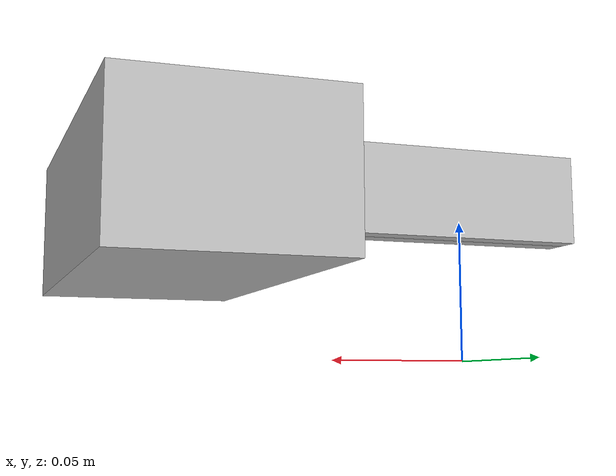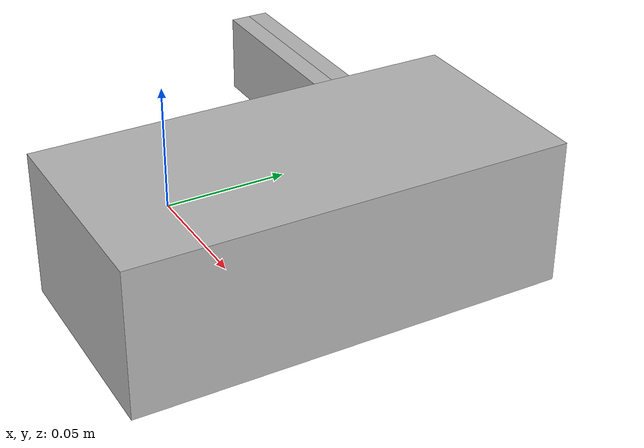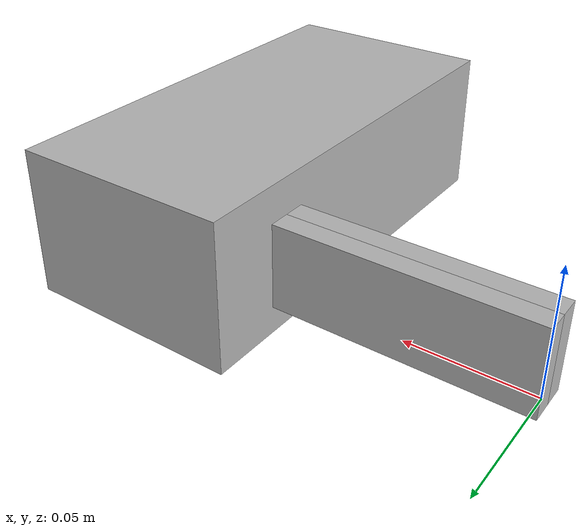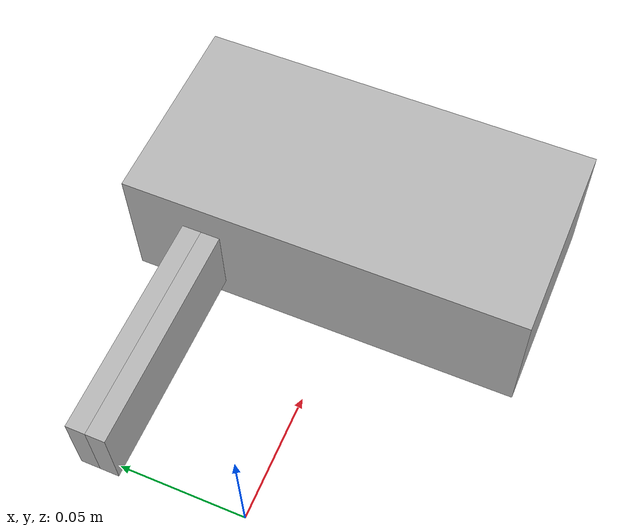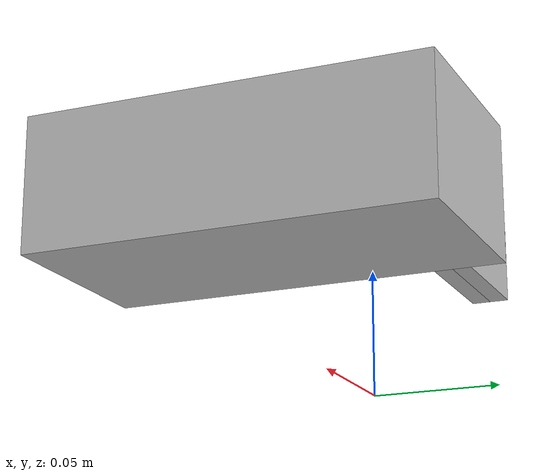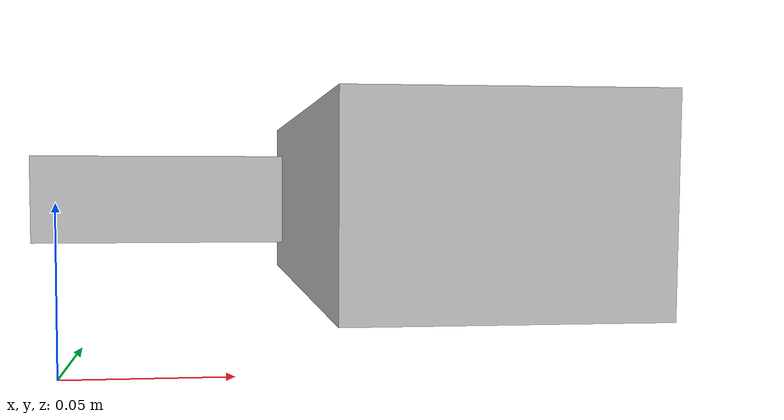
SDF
<?xml version='1.0'?>
<sdf version='1.6'>
  <model name='Schunk_Gripper'>
    <!-- From contact_model/rigid_mug_gripper: Eigen::Vector3d(0.055 + 5e-4, 0, kMugHeight / 2 + 5e-4) -->
    <pose>0.0555 0 0.0505 0 0 1.57</pose>

    <joint name='weld_base' type='fixed'>
      <parent>world</parent>
      <child>y_translate_link</child>
      <pose>0 0 0 0 0 0</pose>
    </joint>

    <link name='y_translate_link'>
      <pose frame=''>0 0 0 0 -0 0</pose>
      <inertial>
        <mass>0.0001</mass>
        <inertia>
          <ixx>0.0001</ixx>
          <ixy>0</ixy>
          <ixz>0</ixz>
          <iyy>0.0001</iyy>
          <iyz>0</iyz>
          <izz>0.0001</izz>
        </inertia>
        <pose frame=''>0 0 0 0 -0 0</pose>
      </inertial>
      <self_collide>0</self_collide>
      <kinematic>0</kinematic>
      <gravity>1</gravity>
    </link>

    <joint name='y_translate_joint' type='prismatic'>
      <parent>y_translate_link</parent>
      <child>body</child>
      <pose frame=''>0 0 0 0 -0 0</pose>
      <axis>
        <xyz>1 0 0</xyz>
        <use_parent_model_frame>1</use_parent_model_frame>
        <!-- Drake attaches an actuator to all and only joints with a nonzero
             effort limit. -->
        <limit>
          <lower>-1</lower>
          <upper>1</upper>
          <effort>80</effort>
          <stiffness>1500</stiffness>
          <dissipation>50</dissipation>
        </limit>
        <dynamics>
          <spring_reference>0</spring_reference>
          <spring_stiffness>0</spring_stiffness>
          <damping>0</damping>
          <friction>0</friction>
        </dynamics>
      </axis>
    </joint>

    <link name='body'>
      <pose frame=''>0 -0.049133 0 0 -0 0</pose>
      <inertial>
        <mass>0.988882</mass>
        <inertia>
          <ixx>0.162992</ixx>
          <ixy>0</ixy>
          <ixz>0</ixz>
          <iyy>0.162992</iyy>
          <iyz>0</iyz>
          <izz>0.164814</izz>
        </inertia>
        <pose frame=''>0 0 0 0 -0 0</pose>
      </inertial>
      <visual name='visual'>
        <pose frame=''>0 0 0 0 -0 0</pose>
        <geometry>
          <box>
            <size>0.146 0.0725 0.049521</size>
          </box>
        </geometry>
      </visual>
    </link>

    <link name='left_finger'>
      <pose frame=''>0.040 0.029 0 0 -0 0</pose>
      <inertial>
        <mass>0.05</mass>
        <inertia>
          <ixx>0.16</ixx>
          <ixy>0</ixy>
          <ixz>0</ixz>
          <iyy>0.16</iyy>
          <iyz>0</iyz>
          <izz>0.16</izz>
        </inertia>
        <pose frame=''>0 0 0 0 -0 0</pose>
      </inertial>
      <visual name='visual'>
        <pose frame=''>0 0 0 0 -0 0</pose>
        <geometry>
          <box>
            <size>0.007 0.081 0.028</size>
          </box>
        </geometry>
      </visual>
    </link>
    <link name='right_finger'> <!-- When viewing from the top and +x-axis points back -->
      <pose frame=''>0.047 0.029 0 0 0 0</pose>
      <inertial>
        <mass>0.05</mass>
        <inertia>
          <ixx>0.16</ixx>
          <ixy>0</ixy>
          <ixz>0</ixz>
          <iyy>0.16</iyy>
          <iyz>0</iyz>
          <izz>0.16</izz>
        </inertia>
        <pose frame=''>0 0 0 0 -0 0</pose>
      </inertial>
      <visual name='visual'>
        <pose frame=''>0 0 0 0 -0 0</pose>
        <geometry>
          <box>
            <size>0.007 0.081 0.028</size>
          </box>
        </geometry>
      </visual>
    </link>

    <joint name='weld_right_finger' type='fixed'>
      <parent>body</parent>
      <child>right_finger</child>
      <pose>0 0 0 0 0 0</pose>
    </joint>

    <!-- Collision filter groups-->
    <collision_filter_group name="finger_filter">
      <member link="left_finger"/>
      <member link="right_finger"/>
      <ignored_collision_filter_group collision_filter_group="finger_filter"/>
    </collision_filter_group>
    <joint name='finger_sliding_joint' type='prismatic'>
      <parent>right_finger</parent>
      <child>left_finger</child>
      <pose frame=''>0 0 0 0 -0 0</pose>
      <axis>
        <xyz>1 0 0</xyz>
        <use_parent_model_frame>0</use_parent_model_frame>
        <!-- Drake attaches an actuator to all and only joints with a nonzero
             effort limit. -->
        <limit>
          <lower>-0.1</lower> <!-- offset w.r.t. absolute zero -->
          <upper>0</upper>
          <effort>90</effort>
        </limit>
      </axis>
    </joint>
  </model>
</sdf>
